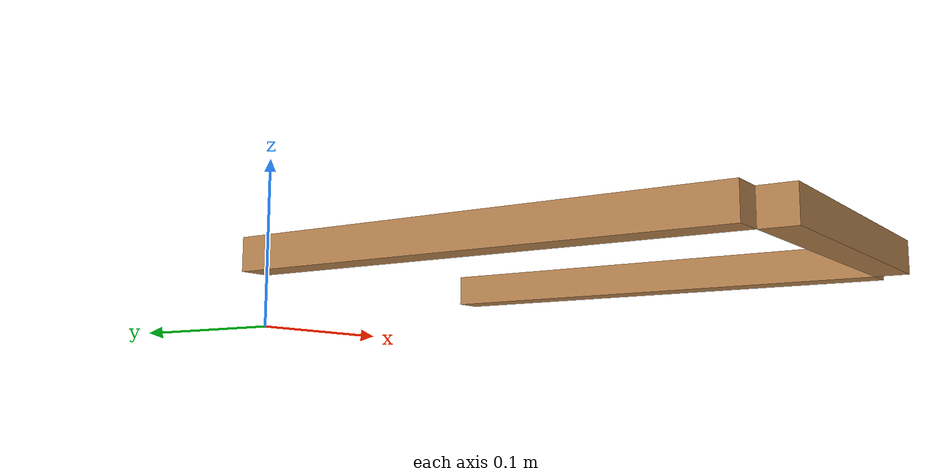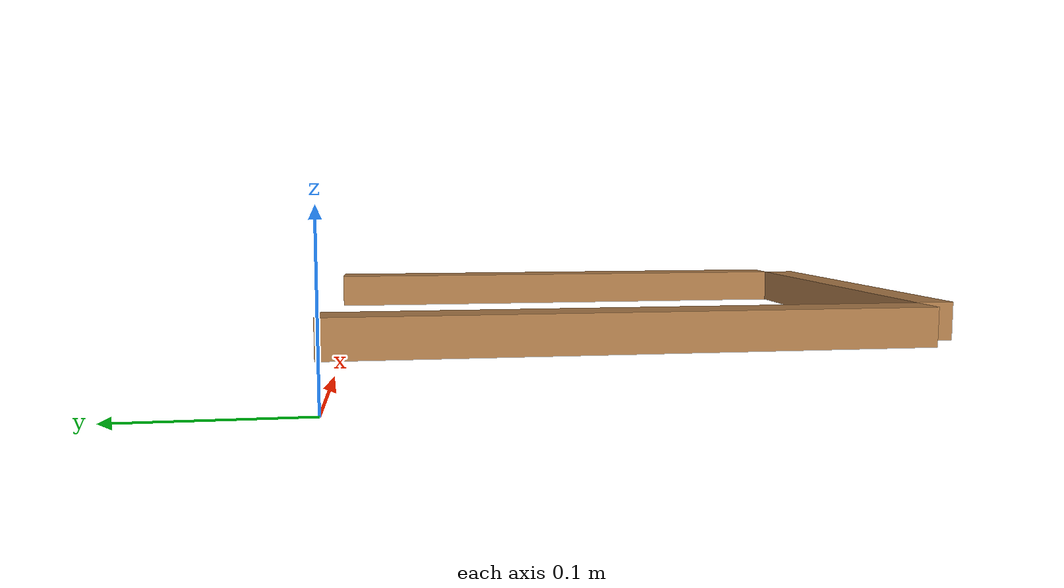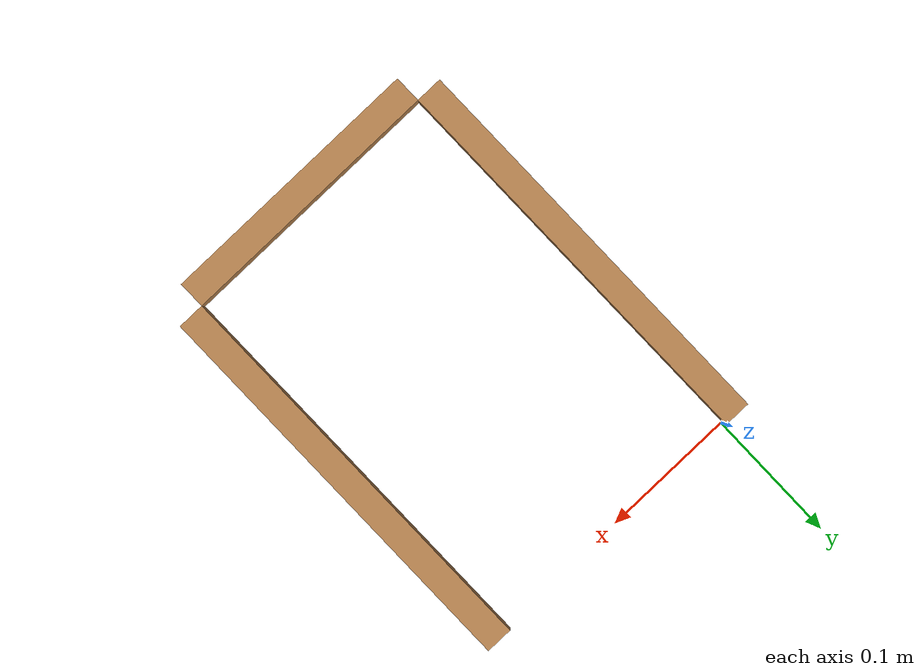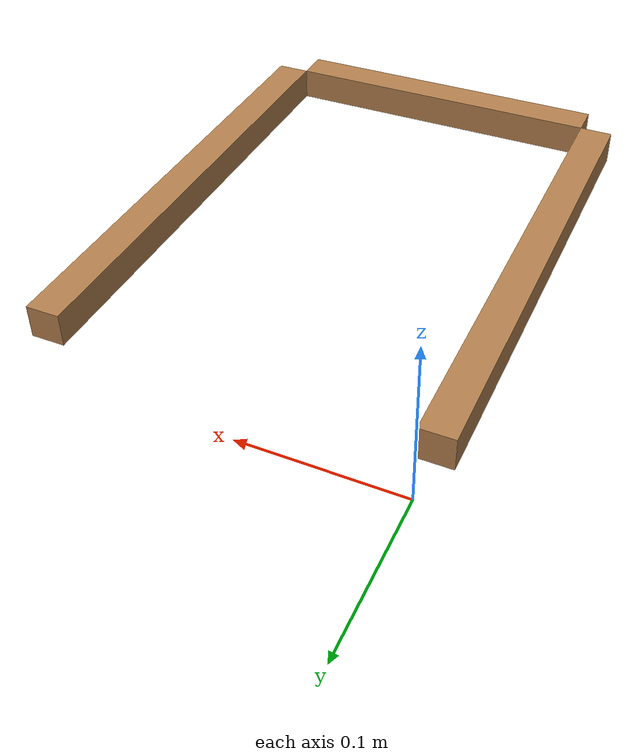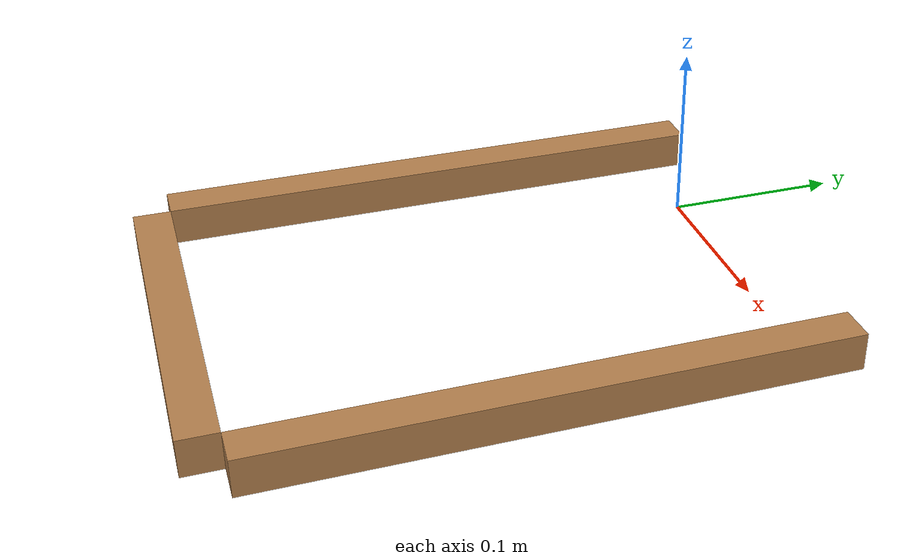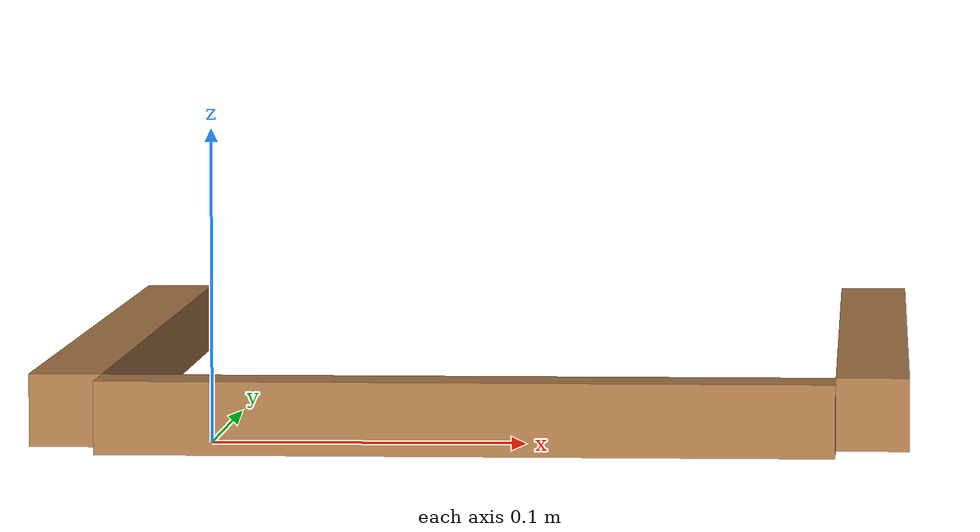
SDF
<?xml version="1.0" ?>
<sdf version="1.5">
  <model name="four_bar">
    <pose>0 0 0.04  0 0 0</pose>
    <self_collide>true</self_collide>
    <link name="link_AB">
      <pose>-0.01 -0.15000000000000002 0  0 0 0</pose>
      <inertial>
        <mass>0.07200000000000001</mass>
        <inertia>
          <ixx>0.0005424000000000002</ixx>
          <iyy>4.800000000000001e-06</iyy>
          <izz>0.0005424000000000002</izz>
          <ixy>0.0</ixy>
          <ixz>0.0</ixz>
          <iyz>0.0</iyz>
        </inertia>
      </inertial>
      <collision name="boxABCollision">
        <geometry>
          <box>
            <size>0.02 0.30000000000000004 0.02</size>
          </box>
        </geometry>
      </collision>
      <visual name="boxABVisual">
        <geometry>
          <box>
            <size>0.02 0.30000000000000004 0.02</size>
          </box>
        </geometry>
        <material>
          <script>
            <uri>file://media/materials/scripts/gazebo.material</uri>
            <name>Gazebo/Wood</name>
          </script>
        </material>
      </visual>
    </link>
    <link name="link_BC">
      <pose>0.1 -0.31000000000000005 0  0 0 0</pose>
      <inertial>
        <mass>0.048</mass>
        <inertia>
          <ixx>3.2000000000000003e-06</ixx>
          <iyy>0.00016160000000000002</iyy>
          <izz>0.00016160000000000002</izz>
          <ixy>0.0</ixy>
          <ixz>0.0</ixz>
          <iyz>0.0</iyz>
        </inertia>
      </inertial>
      <collision name="boxBCCollision">
        <geometry>
          <box>
            <size>0.2 0.02 0.02</size>
          </box>
        </geometry>
      </collision>
      <visual name="boxBCVisual">
        <geometry>
          <box>
            <size>0.2 0.02 0.02</size>
          </box>
        </geometry>
        <material>
          <script>
            <uri>file://media/materials/scripts/gazebo.material</uri>
            <name>Gazebo/Wood</name>
          </script>
        </material>
      </visual>
    </link>
    <link name="link_CD">
      <pose>0.21000000000000002 -0.15000000000000002 0  0 0 0</pose>
      <inertial>
        <mass>0.07200000000000001</mass>
        <inertia>
          <ixx>0.0005424000000000002</ixx>
          <iyy>4.800000000000001e-06</iyy>
          <izz>0.0005424000000000002</izz>
          <ixy>0.0</ixy>
          <ixz>0.0</ixz>
          <iyz>0.0</iyz>
        </inertia>
      </inertial>
      <collision name="boxCDCollision">
        <geometry>
          <box>
            <size>0.02 0.30000000000000004 0.02</size>
          </box>
        </geometry>
      </collision>
      <visual name="boxCDVisual">
        <geometry>
          <box>
            <size>0.02 0.30000000000000004 0.02</size>
          </box>
        </geometry>
        <material>
          <script>
            <uri>file://media/materials/scripts/gazebo.material</uri>
            <name>Gazebo/Wood</name>
          </script>
        </material>
      </visual>
    </link>
    <joint name="joint_A" type="revolute">
      <pose>0.01 0.15000000000000002 0 0 0 0</pose>
      <parent>world</parent>
      <child>link_AB</child>
      <axis>
        <xyz>0 0 1</xyz>
      </axis>
    </joint>
    <joint name="joint_B" type="revolute">
      <pose>-0.1 0.01 0 0 0 0</pose>
      <parent>link_AB</parent>
      <child>link_BC</child>
      <axis>
        <xyz>0 0 1</xyz>
      </axis>
    </joint>
    <joint name="joint_D" type="revolute">
      <pose>-0.01 0.15000000000000002 0 0 0 0</pose>
      <parent>world</parent>
      <child>link_CD</child>
      <axis>
        <xyz>0 0 1</xyz>
      </axis>
    </joint>

    <joint name="joint_C" type="revolute">
      <pose>0.1 0.01 0 0 0 0</pose>
      <parent>link_BC</parent>
      <child>link_CD_closing</child>
      <axis>
        <xyz>0 0 1</xyz>
        <limit>
          <lower>-1.4</lower>
          <upper>1.4</upper>
        </limit>
      </axis>
    </joint>

    <link name="link_CD_closing">
      <pose>0.1 -0.31000000000000005 0  0 0 0</pose>
    </link>

    <!-- custom plugin, simpler but custom -->

    <!-- existing plugin, hope this model is spawned under this name -->
    <plugin filename="libgz-sim-detachable-joint-system.so" name="gz::sim::systems::DetachableJoint">
      <parent_link>link_CD</parent_link>
      <child_model>four_bar</child_model>  <!-- of course I know him, it's me -->
      <child_link>link_CD_closing</child_link>
      <attach_topic>close_loop</attach_topic>
    </plugin>

    <plugin filename="libignition-gazebo-joint-state-publisher-system.so"
            name="ignition::gazebo::systems::JointStatePublisher"/>

    <plugin filename="libignition-gazebo-apply-joint-force-system.so"
          name="ignition::gazebo::systems::ApplyJointForce">
        <joint_name>joint_A</joint_name>
    </plugin>

    <plugin filename="libignition-gazebo-apply-joint-force-system.so"
          name="ignition::gazebo::systems::ApplyJointForce">
        <joint_name>joint_D</joint_name>
    </plugin>

  </model>
</sdf>
